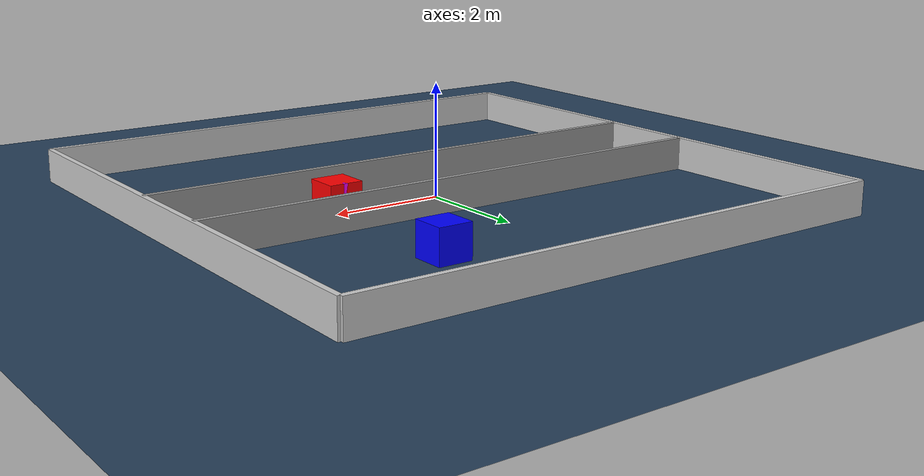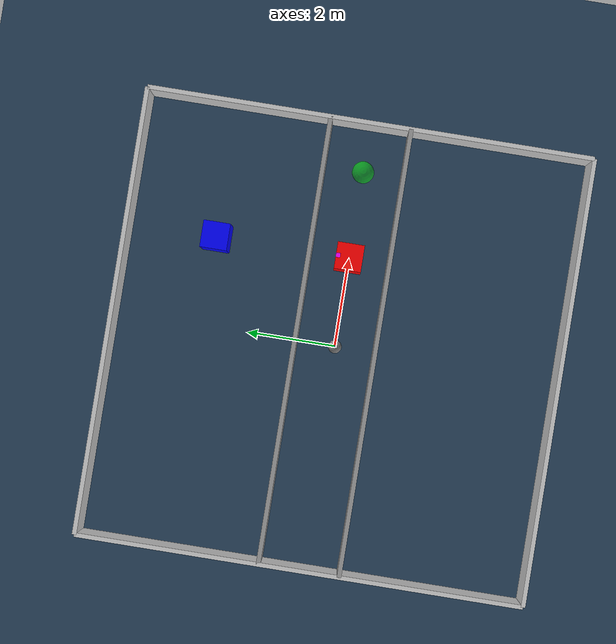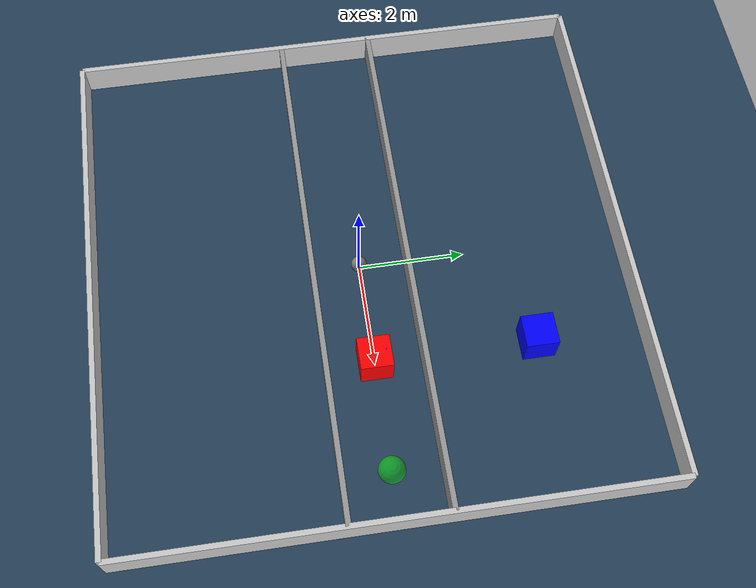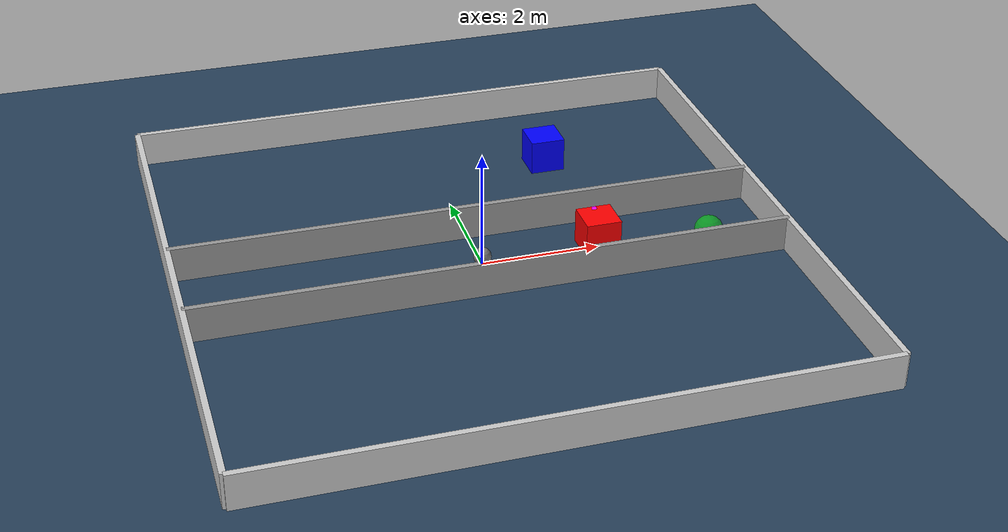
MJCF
<?xml version="1.0" ?>
<mujoco model="geometric_transport_priority_fixture">
  <option cone="elliptic" integrator="RK4" timestep="0.01"/>
  <default>
    <geom density="1"/>
  </default>
  <asset>
    <texture builtin="gradient" height="3072" rgb1="0.3 0.5 0.7" rgb2="0 0 0" type="skybox" width="512"/>
    <texture builtin="checker" height="300" mark="edge" markrgb="0.8 0.8 0.8" name="groundplane" rgb1="0.2 0.3 0.4" rgb2="0.1 0.2 0.3" type="2d" width="300"/>
    <material name="groundplane" reflectance="0.2" texrepeat="5 5" texture="groundplane" texuniform="true"/>
    <material name="robot" rgba="1.0 1.0 0.0 1.0"/>
  </asset>

  <worldbody>
    <light dir="0 0 -1" directional="true" pos="0 0 1.5"/>
    <geom condim="4" friction="0.5 0.005 0.001" material="groundplane" name="floor" size="0 0 0.05" type="plane"/>

    <!-- Outer bounding walls -->
    <body name="walls">
      <geom condim="4" name="wall_left" pos="-5.0 0.0 0.3" rgba="0.8 0.8 0.8 1.0" size="0.05 5.0 0.3" type="box"/>
      <geom condim="4" name="wall_right" pos="5.0 0.0 0.3" rgba="0.8 0.8 0.8 1.0" size="0.05 5.0 0.3" type="box"/>
      <geom condim="4" name="wall_bottom" pos="0.0 -5.0 0.3" rgba="0.8 0.8 0.8 1.0" size="5.0 0.05 0.3" type="box"/>
      <geom condim="4" name="wall_top" pos="0.0 5.0 0.3" rgba="0.8 0.8 0.8 1.0" size="5.0 0.05 0.3" type="box"/>

      <!-- Corridor walls near the robot->goal path (y=0) to enable static-collision tests -->
      <geom condim="4" name="corridor_wall_top" pos="0.0 0.9 0.3" rgba="0.6 0.6 0.6 1.0" size="5.0 0.05 0.3" type="box"/>
      <geom condim="4" name="corridor_wall_bottom" pos="0.0 -0.9 0.3" rgba="0.6 0.6 0.6 1.0" size="5.0 0.05 0.3" type="box"/>
    </body>

    <!-- Robot starts at origin -->
    <body name="robot">
      <joint axis="1 0 0" name="joint_x" pos="0 0 0" type="slide"/>
      <joint axis="0 1 0" name="joint_y" pos="0 0 0" type="slide"/>
      <geom condim="4" friction="1.0 0.005 0.0001" mass="5.0" name="robot" pos="0.0 0.0 0.15" size="0.15 0.15 0.15" type="sphere"/>
    </body>

    <!-- Movable object under test -->
    <body name="obstacle_1_movable">
      <geom condim="4" euler="0 0 0" friction="0.0 0.005 0.001" mass="0.1" name="obstacle_1_movable" pos="2.0 0.0 0.3" rgba="1 0 0 1" size="0.3 0.3 0.3" type="box"/>
      <joint type="free"/>
    </body>

    <!-- Second movable object for movable-collision test -->
    <body name="obstacle_2_movable">
      <geom condim="4" euler="0 0 0" friction="0.0 0.005 0.001" mass="0.1" name="obstacle_2_movable" pos="2.0 3.0 0.3" rgba="0 0 1 1" size="0.3 0.3 0.3" type="box"/>
      <joint type="free"/>
    </body>

    <!-- Small movable object near the path to enable movable-collision+no-opening without blocking the BFS path -->
    <body name="obstacle_3_movable">
      <geom condim="4" euler="0 0 0" friction="0.0 0.005 0.001" mass="0.1" name="obstacle_3_movable" pos="2.0 0.25 0.3" rgba="1 0 1 1" size="0.05 0.05 0.3" type="box"/>
      <joint type="free"/>
    </body>

    <site name="goal" pos="4.0 0.0 0.0" rgba="0 1 0 0.5" size="0.25 0.25 0.25" type="sphere"/>
  </worldbody>

  <actuator>
    <velocity kv="50" ctrlrange="-0.5 0.5" forcerange="-20 20" joint="joint_x" name="actuator_x"/>
    <velocity kv="50" ctrlrange="-0.5 0.5" forcerange="-20 20" joint="joint_y" name="actuator_y"/>
  </actuator>
</mujoco>
